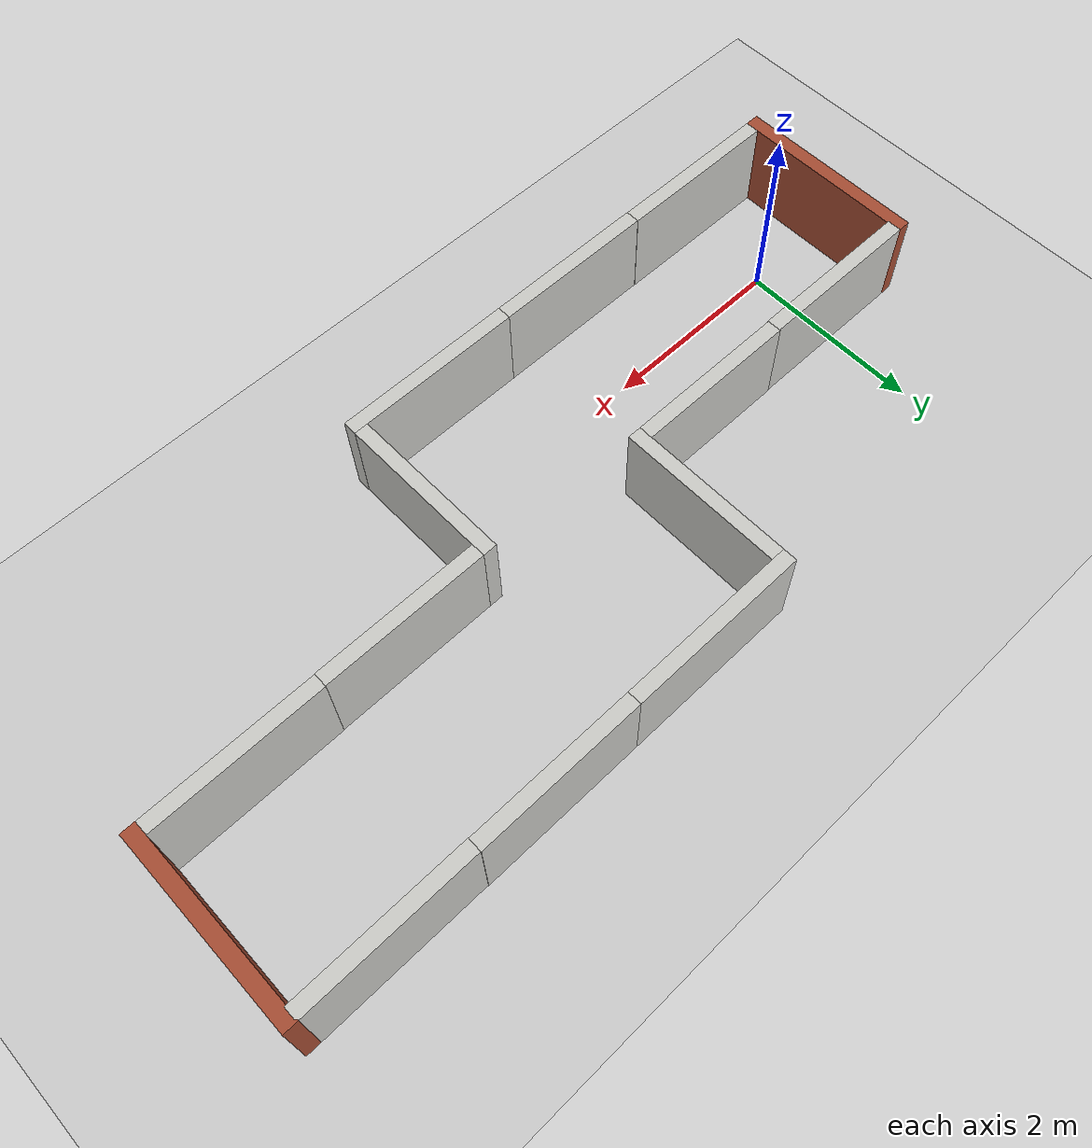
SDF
<sdf version="1.6">
 <world name="default">
  <light name="sun" type="directional">
   <pose>0 0 10 0 -0 0</pose>
   <diffuse>0.8 0.8 0.8 1</diffuse>
   <specular>0.1 0.1 0.1 1</specular>
   <attenuation>
    <range>1000</range>
    <constant>0.9</constant>
    <linear>0.01</linear>
    <quadratic>0.001</quadratic>
   </attenuation>
   <direction>-0.5 0.5 -1</direction>
  </light>
  <model name="ground_plane">
   <static>1</static>
   <link name="link">
    <collision name="collision">
     <geometry><plane><normal>0 0 1</normal><size>100 100</size></plane></geometry>
     <surface><friction><ode><mu>100</mu><mu2>50</mu2></ode></friction></surface>
    </collision>
    <visual name="visual">
     <cast_shadows>0</cast_shadows>
     <geometry><plane><normal>0 0 1</normal><size>100 100</size></plane></geometry>
     <material>
      <script><uri>file://media/materials/scripts/concrete.material</uri><name>Concrete/1</name></script>
     </material>
    </visual>
   </link>
  </model>
  <gravity>0 0 -9.8</gravity>
  <magnetic_field>6e-06 2.3e-05 -4.2e-05</magnetic_field>
  <atmosphere type="adiabatic"/>
  <physics name="default_physics" default="0" type="ode">
   <max_step_size>0.001</max_step_size>
   <real_time_factor>1.5</real_time_factor>
   <real_time_update_rate>1500</real_time_update_rate>
  </physics>
  <scene><ambient>0.4 0.4 0.4 1</ambient><background>0.7 0.7 0.7 1</background><shadows>1</shadows></scene>
  <spherical_coordinates>
   <surface_model>EARTH_WGS84</surface_model>
   <latitude_deg>0</latitude_deg>
   <longitude_deg>0</longitude_deg>
   <elevation>0</elevation>
   <heading_deg>0</heading_deg>
  </spherical_coordinates>
  <model name="track_end">
   <static>1</static>
   <pose>0 0 0 0 -0 1.5708</pose>
   <link name="Wall_1">
    <collision name="Wall_1_Collision">
     <geometry><box><size>1.8 0.15 1</size></box></geometry>
     <pose>0 0 0.5 0 -0 0</pose>
    </collision>
    <visual name="Wall_1_Visual">
     <pose>0 0 0.5 0 -0 0</pose>
     <geometry><box><size>1.8 0.15 1</size></box></geometry>
     <material>
      <script><uri>file://media/materials/scripts/gazebo.material</uri><name>Gazebo/CeilingTiled</name></script>
      <ambient>1 0.764706 0.305882 1</ambient>
     </material>
    </visual>
    <pose>-0.95 -0.065 0 0 0 -1.5708</pose>
   </link>
   <link name="Wall_2">
    <collision name="Wall_2_Collision">
     <geometry><box><size>1.8 0.15 1</size></box></geometry>
     <pose>0 0 0.5 0 -0 0</pose>
    </collision>
    <visual name="Wall_2_Visual">
     <pose>0 0 0.5 0 -0 0</pose>
     <geometry><box><size>1.8 0.15 1</size></box></geometry>
     <material>
      <script><uri>file://media/materials/scripts/gazebo.material</uri><name>Gazebo/CeilingTiled</name></script>
      <ambient>1 0.764706 0.305882 1</ambient>
     </material>
    </visual>
    <pose>0.95 -0.065 0 0 0 -1.5708</pose>
   </link>
   <link name="Wall_3">
    <collision name="Wall_3_Collision">
     <geometry><box><size>2.05 0.15 1.5</size></box></geometry>
     <pose>0 0 0.75 0 -0 0</pose>
    </collision>
    <visual name="Wall_3_Visual">
     <pose>0 0 0.5 0 -0 0</pose>
     <geometry><box><size>2.05 0.15 1</size></box></geometry>
     <material>
      <script><uri>file://media/materials/scripts/gazebo.material</uri><name>Gazebo/Bricks</name></script>
      <ambient>0.996078 0.47451 0.0196078 1</ambient>
     </material>
    </visual>
    <pose>0 0.89 0 0 -0 0</pose>
   </link>
  </model>
  <model name="track_end_0">
   <static>1</static>
   <pose>7.33208 1.7518 0 0 0 -1.5708</pose>
   <link name="Wall_1">
    <collision name="Wall_1_Collision">
     <geometry><box><size>1.8 0.15 1</size></box></geometry>
     <pose>0 0 0.5 0 -0 0</pose>
    </collision>
    <visual name="Wall_1_Visual">
     <pose>0 0 0.5 0 -0 0</pose>
     <geometry><box><size>1.8 0.15 1</size></box></geometry>
     <material>
      <script><uri>file://media/materials/scripts/gazebo.material</uri><name>Gazebo/CeilingTiled</name></script>
      <ambient>1 0.764706 0.305882 1</ambient>
     </material>
    </visual>
    <pose>-0.95 -0.065 0 0 0 -1.5708</pose>
   </link>
   <link name="Wall_2">
    <collision name="Wall_2_Collision">
     <geometry><box><size>1.8 0.15 1</size></box></geometry>
     <pose>0 0 0.5 0 -0 0</pose>
    </collision>
    <visual name="Wall_2_Visual">
     <pose>0 0 0.5 0 -0 0</pose>
     <geometry><box><size>1.8 0.15 1</size></box></geometry>
     <material>
      <script><uri>file://media/materials/scripts/gazebo.material</uri><name>Gazebo/CeilingTiled</name></script>
      <ambient>1 0.764706 0.305882 1</ambient>
     </material>
    </visual>
    <pose>0.95 -0.065 0 0 0 -1.5708</pose>
   </link>
   <link name="Wall_3">
    <collision name="Wall_3_Collision">
     <geometry><box><size>2.05 0.15 1.5</size></box></geometry>
     <pose>0 0 0.75 0 -0 0</pose>
    </collision>
    <visual name="Wall_3_Visual">
     <pose>0 0 0.5 0 -0 0</pose>
     <geometry><box><size>2.05 0.15 1</size></box></geometry>
     <material>
      <script><uri>file://media/materials/scripts/gazebo.material</uri><name>Gazebo/Bricks</name></script>
      <ambient>0.996078 0.47451 0.0196078 1</ambient>
     </material>
    </visual>
    <pose>0 0.89 0 0 -0 0</pose>
   </link>
  </model>
  <model name="track_straight">
   <static>1</static>
   <pose>1.83643 0.001814 0 0 0 -1.5708</pose>
   <link name="Wall_1">
    <collision name="Wall_1_Collision">
     <geometry><box><size>1.75 0.15 1</size></box></geometry>
     <pose>0 0 0.5 0 -0 0</pose>
    </collision>
    <visual name="Wall_1_Visual">
     <pose>0 0 0.5 0 -0 0</pose>
     <geometry><box><size>1.75 0.15 1</size></box></geometry>
     <material>
      <script><uri>file://media/materials/scripts/gazebo.material</uri><name>Gazebo/CeilingTiled</name></script>
      <ambient>1 0.764706 0.305882 1</ambient>
     </material>
    </visual>
    <pose>-0.955 0.002 0 0 0 -1.5708</pose>
   </link>
   <link name="Wall_2">
    <collision name="Wall_2_Collision">
     <geometry><box><size>1.75 0.15 1</size></box></geometry>
     <pose>0 0 0.5 0 -0 0</pose>
    </collision>
    <visual name="Wall_2_Visual">
     <pose>0 0 0.5 0 -0 0</pose>
     <geometry><box><size>1.75 0.15 1</size></box></geometry>
     <material>
      <script><uri>file://media/materials/scripts/gazebo.material</uri><name>Gazebo/CeilingTiled</name></script>
      <ambient>1 0.764706 0.305882 1</ambient>
     </material>
    </visual>
    <pose>0.955 0.002 0 0 0 -1.5708</pose>
   </link>
  </model>
  <model name="track_straight_0">
   <static>1</static>
   <pose>5.49287 1.75148 0 0 0 -1.5708</pose>
   <link name="Wall_1">
    <collision name="Wall_1_Collision">
     <geometry><box><size>1.75 0.15 1</size></box></geometry>
     <pose>0 0 0.5 0 -0 0</pose>
    </collision>
    <visual name="Wall_1_Visual">
     <pose>0 0 0.5 0 -0 0</pose>
     <geometry><box><size>1.75 0.15 1</size></box></geometry>
     <material>
      <script><uri>file://media/materials/scripts/gazebo.material</uri><name>Gazebo/CeilingTiled</name></script>
      <ambient>1 0.764706 0.305882 1</ambient>
     </material>
    </visual>
    <pose>-0.955 0.002 0 0 0 -1.5708</pose>
   </link>
   <link name="Wall_2">
    <collision name="Wall_2_Collision">
     <geometry><box><size>1.75 0.15 1</size></box></geometry>
     <pose>0 0 0.5 0 -0 0</pose>
    </collision>
    <visual name="Wall_2_Visual">
     <pose>0 0 0.5 0 -0 0</pose>
     <geometry><box><size>1.75 0.15 1</size></box></geometry>
     <material>
      <script><uri>file://media/materials/scripts/gazebo.material</uri><name>Gazebo/CeilingTiled</name></script>
      <ambient>1 0.764706 0.305882 1</ambient>
     </material>
    </visual>
    <pose>0.955 0.002 0 0 0 -1.5708</pose>
   </link>
  </model>
  <model name="track_corner">
   <static>1</static>
   <pose>3.66462 -0.076572 0 0 -0 3.14159</pose>
   <link name="Wall_1">
    <collision name="Wall_1_Collision">
     <geometry><box><size>1.75 0.15 1</size></box></geometry>
     <pose>0 0 0.5 0 -0 0</pose>
    </collision>
    <visual name="Wall_1_Visual">
     <pose>0 0 0.5 0 -0 0</pose>
     <geometry><box><size>1.75 0.15 1</size></box></geometry>
     <material>
      <script><uri>file://media/materials/scripts/gazebo.material</uri><name>Gazebo/CeilingTiled</name></script>
      <ambient>1 0.764706 0.305882 1</ambient>
     </material>
    </visual>
    <pose>-0.882493 -0.073007 0 0 0 -1.5708</pose>
   </link>
   <link name="Wall_2">
    <collision name="Wall_2_Collision">
     <geometry><box><size>1.91042 0.15 1</size></box></geometry>
     <pose>0 0 0.5 0 -0 0</pose>
    </collision>
    <visual name="Wall_2_Visual">
     <pose>0 0 0.5 0 -0 0</pose>
     <geometry><box><size>1.91042 0.15 1</size></box></geometry>
     <material>
      <script><uri>file://media/materials/scripts/gazebo.material</uri><name>Gazebo/CeilingTiled</name></script>
      <ambient>1 0.764706 0.305882 1</ambient>
     </material>
    </visual>
    <pose>-0.002284 0.876825 0 0 -0 3.1414</pose>
   </link>
  </model>
  <model name="track_corner_0">
   <static>1</static>
   <pose>3.66785 1.82994 0 0 -0 0</pose>
   <link name="Wall_1">
    <collision name="Wall_1_Collision">
     <geometry><box><size>1.75 0.15 1</size></box></geometry>
     <pose>0 0 0.5 0 -0 0</pose>
    </collision>
    <visual name="Wall_1_Visual">
     <pose>0 0 0.5 0 -0 0</pose>
     <geometry><box><size>1.75 0.15 1</size></box></geometry>
     <material>
      <script><uri>file://media/materials/scripts/gazebo.material</uri><name>Gazebo/CeilingTiled</name></script>
      <ambient>1 0.764706 0.305882 1</ambient>
     </material>
    </visual>
    <pose>-0.882493 -0.073007 0 0 0 -1.5708</pose>
   </link>
   <link name="Wall_2">
    <collision name="Wall_2_Collision">
     <geometry><box><size>1.91042 0.15 1</size></box></geometry>
     <pose>0 0 0.5 0 -0 0</pose>
    </collision>
    <visual name="Wall_2_Visual">
     <pose>0 0 0.5 0 -0 0</pose>
     <geometry><box><size>1.91042 0.15 1</size></box></geometry>
     <material>
      <script><uri>file://media/materials/scripts/gazebo.material</uri><name>Gazebo/CeilingTiled</name></script>
      <ambient>1 0.764706 0.305882 1</ambient>
     </material>
    </visual>
    <pose>-0.002284 0.876825 0 0 -0 3.1414</pose>
   </link>
  </model>
 </world>
</sdf>
